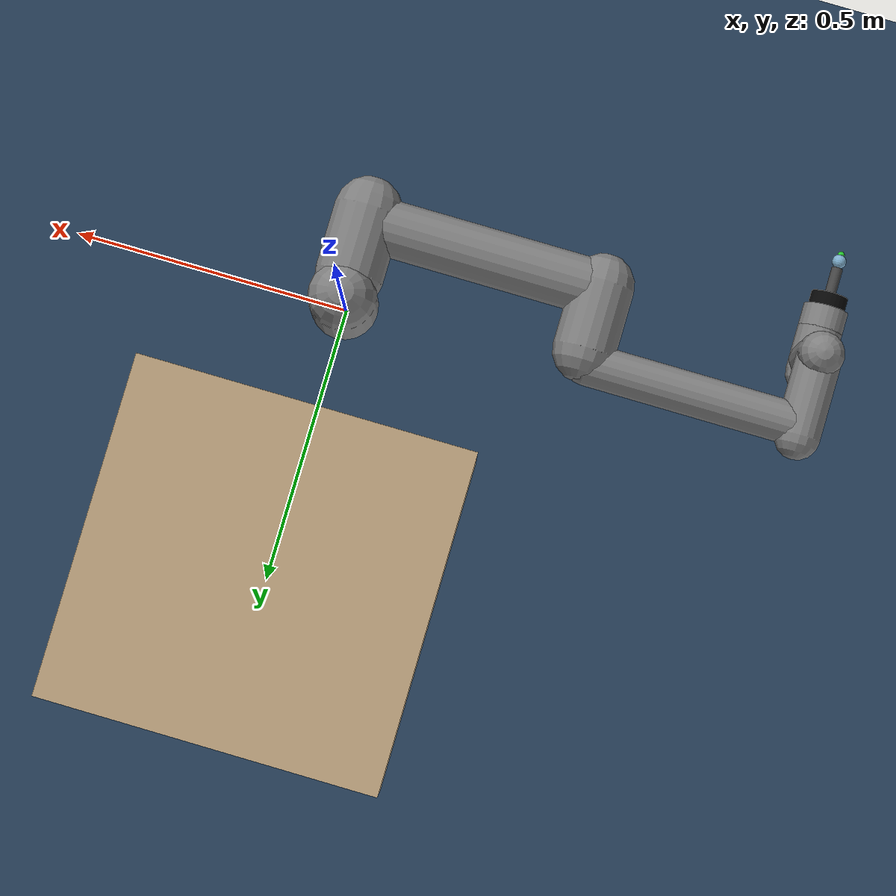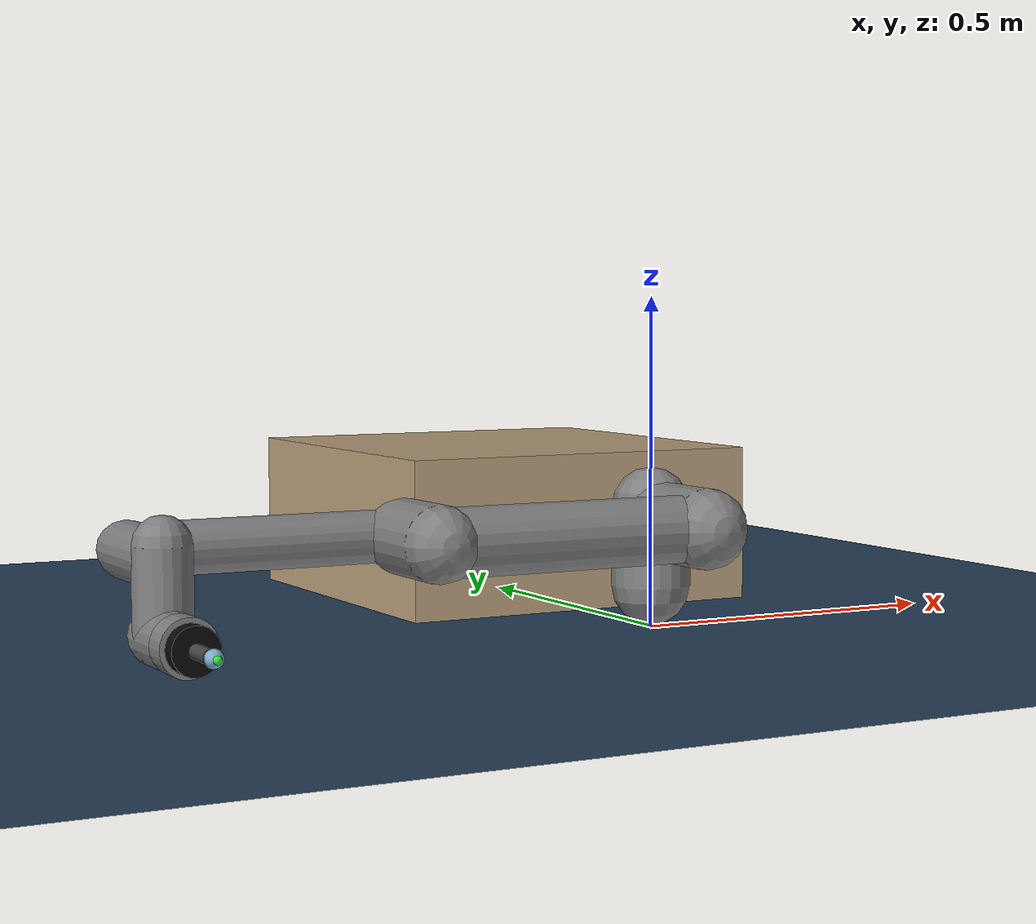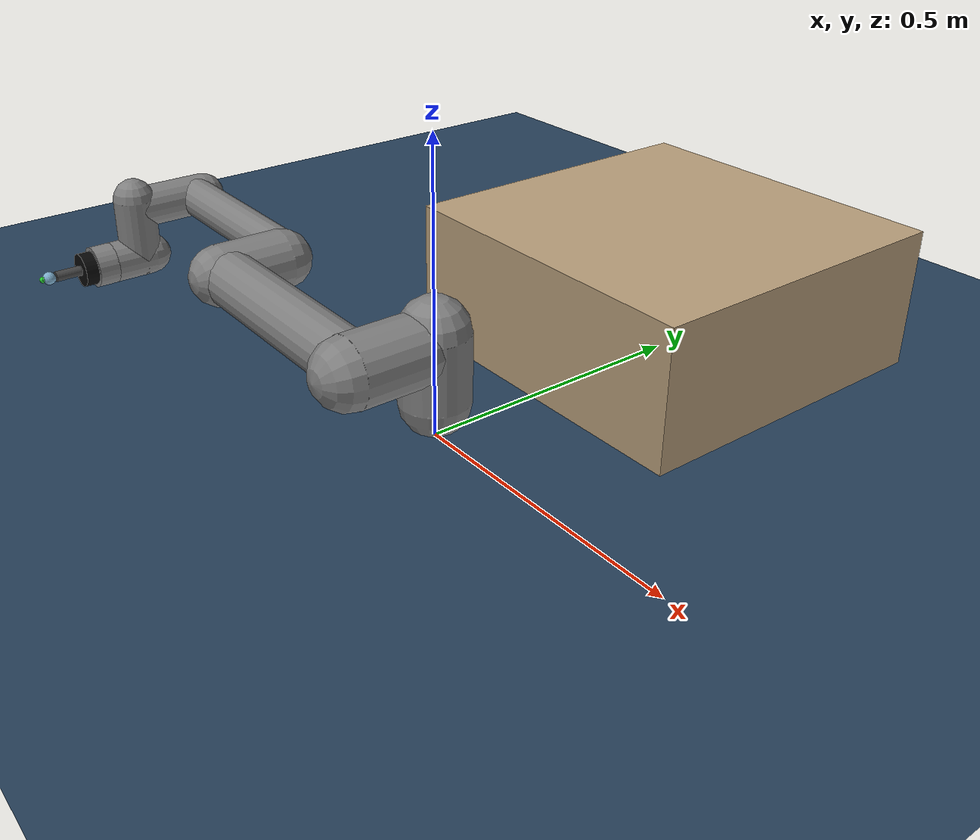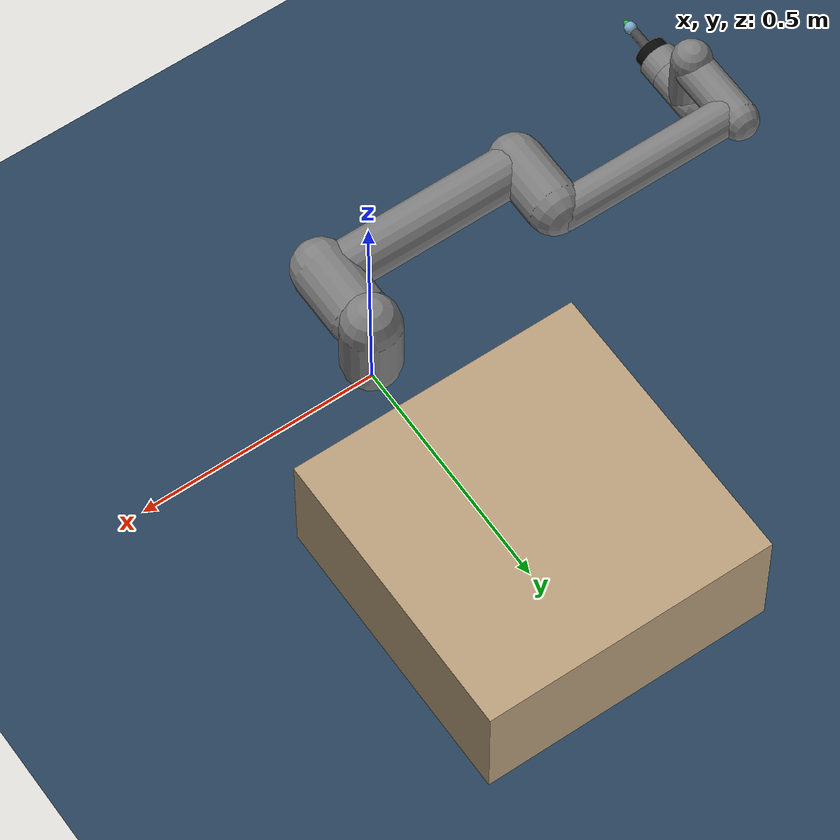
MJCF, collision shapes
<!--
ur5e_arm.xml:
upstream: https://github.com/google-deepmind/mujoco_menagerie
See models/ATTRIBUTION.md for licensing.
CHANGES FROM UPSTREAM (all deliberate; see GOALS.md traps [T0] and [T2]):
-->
<mujoco model="ur5e force control scene">
  <include file="ur5e_arm.xml"/>

  <statistic center="0 0.4 0.3" extent="1.2"/>

  <visual>
    <headlight diffuse="0.6 0.6 0.6" ambient="0.1 0.1 0.1" specular="0 0 0"/>
    <rgba haze="0.15 0.25 0.35 1"/>
    <global azimuth="140" elevation="-20"/>
  </visual>

  <asset>
    <texture type="skybox" builtin="gradient" rgb1="0.3 0.5 0.7" rgb2="0 0 0"
      width="512" height="3072"/>
    <texture type="2d" name="groundplane" builtin="checker" mark="edge"
      rgb1="0.2 0.3 0.4" rgb2="0.1 0.2 0.3" markrgb="0.8 0.8 0.8"
      width="300" height="300"/>
    <material name="groundplane" texture="groundplane" texuniform="true"
      texrepeat="5 5" reflectance="0.2"/>
    <material name="tabletop" rgba="0.72 0.62 0.48 1" specular="0.2" shininess="0.1"/>
  </asset>

  <worldbody>
    <light pos="0 0 2" dir="0 0 -1" directional="true"/>
    <geom name="floor" size="0 0 0.05" type="plane" material="groundplane"/>

    <!-- Rigid table. Static (no joint), so it is welded to the world. -->
    <body name="table" pos="0 0.5 0.125">
      <geom name="table_top" type="box" size="0.3 0.3 0.125"
        material="tabletop" condim="3" friction="0.6 0.005 0.0001"
        solref="0.02 1" solimp="0.9 0.95 0.001"/>
    </body>
  </worldbody>

  <keyframe>
    <key name="approach" qpos="-1.570796 -1.520651 1.851840 -1.901985 -1.570796 0"
      ctrl="0 0 0 0 0 0"/>
    <key name="touch"    qpos="-1.570796 -1.512358 1.870132 -1.928570 -1.570796 0"
      ctrl="0 0 0 0 0 0"/>
  </keyframe>
</mujoco>

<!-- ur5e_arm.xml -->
<mujoco model="ur5e_force_control">
  <compiler angle="radian" meshdir="assets" autolimits="true"/>

  <option timestep="0.002" integrator="implicitfast"/>

  <default>
    <default class="ur5e">
      <material specular="0.5" shininess="0.25"/>
      <joint axis="0 1 0" range="-6.28319 6.28319" armature="0.1"/>
      <general gaintype="fixed" biastype="affine" ctrlrange="-6.2831 6.2831" gainprm="2000" biasprm="0 -2000 -400"
        forcerange="-150 150"/>
      <default class="size3">
        <default class="size3_limited">
          <joint range="-3.1415 3.1415"/>
          <general ctrlrange="-3.1415 3.1415"/>
        </default>
      </default>
      <default class="size1">
        <general gainprm="500" biasprm="0 -500 -100" forcerange="-28 28"/>
      </default>
      <default class="visual">
        <geom type="mesh" contype="0" conaffinity="0" group="2"/>
      </default>
      <default class="collision">
        <geom type="capsule" group="3"/>
        <default class="eef_collision">
          <geom type="cylinder"/>
        </default>
      </default>
      <site size="0.001" rgba="0.5 0.5 0.5 0.3" group="4"/>
    </default>
  </default>

  <asset>
    <material class="ur5e" name="black" rgba="0.033 0.033 0.033 1"/>
    <material class="ur5e" name="jointgray" rgba="0.278 0.278 0.278 1"/>
    <material class="ur5e" name="linkgray" rgba="0.82 0.82 0.82 1"/>
    <material class="ur5e" name="urblue" rgba="0.49 0.678 0.8 1"/>

    <mesh file="base_0.obj"/>
    <mesh file="base_1.obj"/>
    <mesh file="shoulder_0.obj"/>
    <mesh file="shoulder_1.obj"/>
    <mesh file="shoulder_2.obj"/>
    <mesh file="upperarm_0.obj"/>
    <mesh file="upperarm_1.obj"/>
    <mesh file="upperarm_2.obj"/>
    <mesh file="upperarm_3.obj"/>
    <mesh file="forearm_0.obj"/>
    <mesh file="forearm_1.obj"/>
    <mesh file="forearm_2.obj"/>
    <mesh file="forearm_3.obj"/>
    <mesh file="wrist1_0.obj"/>
    <mesh file="wrist1_1.obj"/>
    <mesh file="wrist1_2.obj"/>
    <mesh file="wrist2_0.obj"/>
    <mesh file="wrist2_1.obj"/>
    <mesh file="wrist2_2.obj"/>
    <mesh file="wrist3.obj"/>
  </asset>

  <worldbody>
    <light name="spotlight" mode="targetbodycom" target="wrist_2_link" pos="0 -1 2"/>
    <body name="base" quat="0 0 0 -1" childclass="ur5e">
      <inertial mass="4.0" pos="0 0 0" diaginertia="0.00443333156 0.00443333156 0.0072"/>
      <geom mesh="base_0" material="black" class="visual"/>
      <geom mesh="base_1" material="jointgray" class="visual"/>
      <body name="shoulder_link" pos="0 0 0.163">
        <inertial mass="3.7" pos="0 0 0" diaginertia="0.0102675 0.0102675 0.00666"/>
        <joint name="shoulder_pan_joint" class="size3" axis="0 0 1"/>
        <geom mesh="shoulder_0" material="urblue" class="visual"/>
        <geom mesh="shoulder_1" material="black" class="visual"/>
        <geom mesh="shoulder_2" material="jointgray" class="visual"/>
        <geom class="collision" size="0.06 0.06" pos="0 0 -0.04"/>
        <body name="upper_arm_link" pos="0 0.138 0" quat="1 0 1 0">
          <inertial mass="8.393" pos="0 0 0.2125" diaginertia="0.133886 0.133886 0.0151074"/>
          <joint name="shoulder_lift_joint" class="size3"/>
          <geom mesh="upperarm_0" material="linkgray" class="visual"/>
          <geom mesh="upperarm_1" material="black" class="visual"/>
          <geom mesh="upperarm_2" material="jointgray" class="visual"/>
          <geom mesh="upperarm_3" material="urblue" class="visual"/>
          <geom class="collision" pos="0 -0.04 0" quat="1 1 0 0" size="0.06 0.06"/>
          <geom class="collision" size="0.05 0.2" pos="0 0 0.2"/>
          <body name="forearm_link" pos="0 -0.131 0.425">
            <inertial mass="2.275" pos="0 0 0.196" diaginertia="0.0311796 0.0311796 0.004095"/>
            <joint name="elbow_joint" class="size3_limited"/>
            <geom mesh="forearm_0" material="urblue" class="visual"/>
            <geom mesh="forearm_1" material="linkgray" class="visual"/>
            <geom mesh="forearm_2" material="black" class="visual"/>
            <geom mesh="forearm_3" material="jointgray" class="visual"/>
            <geom class="collision" pos="0 0.08 0" quat="1 1 0 0" size="0.055 0.06"/>
            <geom class="collision" size="0.038 0.19" pos="0 0 0.2"/>
            <body name="wrist_1_link" pos="0 0 0.392" quat="1 0 1 0">
              <inertial mass="1.219" pos="0 0.127 0" diaginertia="0.0025599 0.0025599 0.0021942"/>
              <joint name="wrist_1_joint" class="size1"/>
              <geom mesh="wrist1_0" material="black" class="visual"/>
              <geom mesh="wrist1_1" material="urblue" class="visual"/>
              <geom mesh="wrist1_2" material="jointgray" class="visual"/>
              <geom class="collision" pos="0 0.05 0" quat="1 1 0 0" size="0.04 0.07"/>
              <body name="wrist_2_link" pos="0 0.127 0">
                <inertial mass="1.219" pos="0 0 0.1" diaginertia="0.0025599 0.0025599 0.0021942"/>
                <joint name="wrist_2_joint" axis="0 0 1" class="size1"/>
                <geom mesh="wrist2_0" material="black" class="visual"/>
                <geom mesh="wrist2_1" material="urblue" class="visual"/>
                <geom mesh="wrist2_2" material="jointgray" class="visual"/>
                <geom class="collision" size="0.04 0.06" pos="0 0 0.04"/>
                <geom class="collision" pos="0 0.02 0.1" quat="1 1 0 0" size="0.04 0.04"/>
                <body name="wrist_3_link" pos="0 0 0.1">
                  <inertial mass="0.1889" pos="0 0.0771683 0" quat="1 0 0 1"
                    diaginertia="0.000132134 9.90863e-05 9.90863e-05"/>
                  <joint name="wrist_3_joint" class="size1"/>
                  <geom material="linkgray" mesh="wrist3" class="visual"/>
                  <geom class="eef_collision" pos="0 0.08 0" quat="1 1 0 0" size="0.04 0.02"/>
                  <site name="attachment_site" pos="0 0.1 0" quat="-1 1 0 0"/>

                  <body name="ft_sensor" pos="0 0.1 0" quat="-1 1 0 0">
                    <inertial mass="0.05" pos="0 0 0.0125"
                      diaginertia="2.0e-5 2.0e-5 3.0e-5"/>
                    <geom name="ft_housing" type="cylinder" size="0.033 0.0125"
                      pos="0 0 0.0125" material="black" class="visual"/>
                    <site name="ft_site" pos="0 0 0" size="0.008" rgba="1 0.2 0.2 0.6" group="0"/>

                    <body name="tool" pos="0 0 0.025">
                      <inertial mass="0.1" pos="0 0 0.03"
                        diaginertia="5.0e-5 5.0e-5 2.0e-5"/>
                      <geom name="tool_shaft" type="cylinder" size="0.01 0.025"
                        pos="0 0 0.025" material="jointgray" class="visual"/>
                      <geom name="probe_tip" type="sphere" size="0.0125" pos="0 0 0.0625"
                        material="urblue" condim="3" friction="0.6 0.005 0.0001"
                        solref="0.02 1" solimp="0.9 0.95 0.001"/>
                      <site name="tcp" pos="0 0 0.075" size="0.006" rgba="0.2 1 0.2 0.8" group="0"/>
                    </body>
                  </body>
                </body>
              </body>
            </body>
          </body>
        </body>
      </body>
    </body>
  </worldbody>

  <!-- ==== CHANGED: torque actuators, replacing upstream position servos ====== -->
  <actuator>
    <motor name="shoulder_pan"  joint="shoulder_pan_joint"  ctrlrange="-150 150" forcerange="-150 150"/>
    <motor name="shoulder_lift" joint="shoulder_lift_joint" ctrlrange="-150 150" forcerange="-150 150"/>
    <motor name="elbow"         joint="elbow_joint"         ctrlrange="-150 150" forcerange="-150 150"/>
    <motor name="wrist_1"       joint="wrist_1_joint"       ctrlrange="-28 28"   forcerange="-28 28"/>
    <motor name="wrist_2"       joint="wrist_2_joint"       ctrlrange="-28 28"   forcerange="-28 28"/>
    <motor name="wrist_3"       joint="wrist_3_joint"       ctrlrange="-28 28"   forcerange="-28 28"/>
  </actuator>

  <!-- ==== ADDED: sensors ===================================================== -->
  <sensor>
    <force  name="ft_force"  site="ft_site"/>
    <torque name="ft_torque" site="ft_site"/>

    <framepos     name="tcp_pos"    objtype="site" objname="tcp"/>
    <framequat    name="tcp_quat"   objtype="site" objname="tcp"/>
    <framelinvel  name="tcp_linvel" objtype="site" objname="tcp"/>
    <frameangvel  name="tcp_angvel" objtype="site" objname="tcp"/>
  </sensor>

  <!-- ==== CHANGED: ctrl zeroed (see header note 4) =========================== -->
  <keyframe>
    <key name="home" qpos="-1.5708 -1.5708 1.5708 -1.5708 -1.5708 0" ctrl="0 0 0 0 0 0"/>
  </keyframe>
</mujoco>
